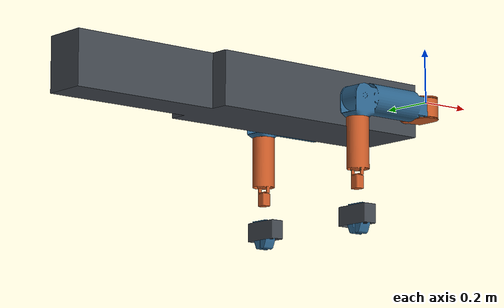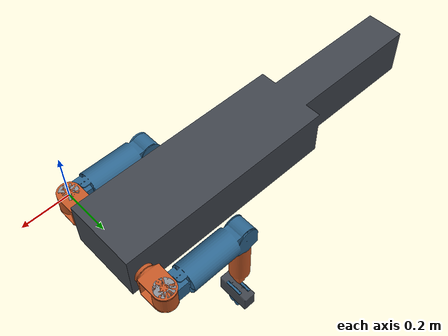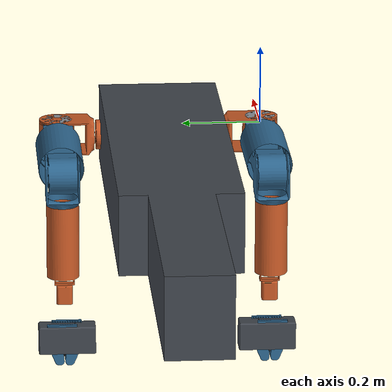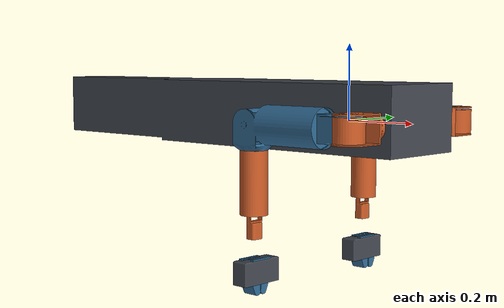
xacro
<?xml version="1.0"?>
<robot name="robothath" xmlns:xacro="http://www.ros.org/wiki/xacro">

  <xacro:property name="span" value="0.5236"/>
  <xacro:property name="mesh" value="package://robothath_description/meshes"/>

  <material name="grey">  <color rgba="0.55 0.57 0.60 1"/></material>
  <material name="orange"><color rgba="0.78 0.35 0.15 1"/></material>
  <material name="steel"> <color rgba="0.18 0.40 0.56 1"/></material>
  <material name="green"> <color rgba="0.20 0.55 0.40 1"/></material>
  <material name="dark">  <color rgba="0.25 0.27 0.30 1"/></material>

  <!-- CAD-derived mass properties, one block per side+part -->
  <xacro:macro name="inertial_lookup" params="side part">
    <xacro:if value="${side == 'l' and part == 'motor_mount'}">
      <inertial>
        <origin xyz="0.00000 0.00005 -0.00172" rpy="0 0 0"/>
        <mass value="0.4243"/>
        <inertia ixx="0.000181" ixy="0.000000" ixz="0.000000" iyy="0.000182" iyz="0.000000" izz="0.000285"/>
      </inertial>
    </xacro:if>
    <xacro:if value="${side == 'l' and part == 'yaw_link'}">
      <inertial>
        <origin xyz="0.00377 0.05427 -0.02738" rpy="0 0 0"/>
        <mass value="1.4721"/>
        <inertia ixx="0.001939" ixy="0.000005" ixz="-0.000016" iyy="0.001448" iyz="0.000037" izz="0.001804"/>
      </inertial>
    </xacro:if>
    <xacro:if value="${side == 'l' and part == 'upper_arm_link'}">
      <inertial>
        <origin xyz="-0.22785 0.00304 -0.00424" rpy="0 0 0"/>
        <mass value="2.3086"/>
        <inertia ixx="0.003372" ixy="-0.000011" ixz="0.000004" iyy="0.003511" iyz="0.000013" izz="0.003458"/>
      </inertial>
    </xacro:if>
    <xacro:if value="${side == 'l' and part == 'forearm_link'}">
      <inertial>
        <origin xyz="-0.00039 0.00256 -0.18329" rpy="0 0 0"/>
        <mass value="0.5888"/>
        <inertia ixx="0.001419" ixy="-0.000000" ixz="0.000001" iyy="0.001354" iyz="0.000004" izz="0.000442"/>
      </inertial>
    </xacro:if>
    <xacro:if value="${side == 'l' and part == 'wrist_link'}">
      <inertial>
        <origin xyz="-0.00020 0.00345 -0.04940" rpy="0 0 0"/>
        <mass value="0.1787"/>
        <inertia ixx="0.000057" ixy="0.000000" ixz="0.000000" iyy="0.000046" iyz="0.000000" izz="0.000040"/>
      </inertial>
    </xacro:if>
    <xacro:if value="${side == 'l' and part == 'gripper_base'}">
      <inertial>
        <origin xyz="0.00310 0.00186 -0.02610" rpy="0 0 0"/>
        <mass value="0.9586"/>
        <inertia ixx="0.001854" ixy="-0.000000" ixz="-0.000000" iyy="0.000447" iyz="-0.000000" izz="0.001879"/>
      </inertial>
    </xacro:if>
    <xacro:if value="${side == 'l' and part == 'finger_inner'}">
      <inertial>
        <origin xyz="0.00042 0.00001 -0.03766" rpy="0 0 0"/>
        <mass value="0.3767"/>
        <inertia ixx="0.000316" ixy="0.000003" ixz="-0.000019" iyy="0.000334" iyz="-0.000019" izz="0.000116"/>
      </inertial>
    </xacro:if>
    <xacro:if value="${side == 'l' and part == 'finger_outer'}">
      <inertial>
        <origin xyz="-0.00035 -0.00002 -0.03766" rpy="0 0 0"/>
        <mass value="0.3767"/>
        <inertia ixx="0.000316" ixy="0.000003" ixz="0.000019" iyy="0.000334" iyz="0.000019" izz="0.000116"/>
      </inertial>
    </xacro:if>
    <xacro:if value="${side == 'r' and part == 'motor_mount'}">
      <inertial>
        <origin xyz="0.00000 -0.00004 -0.00172" rpy="0 0 0"/>
        <mass value="0.4243"/>
        <inertia ixx="0.000181" ixy="-0.000000" ixz="0.000000" iyy="0.000182" iyz="-0.000000" izz="0.000285"/>
      </inertial>
    </xacro:if>
    <xacro:if value="${side == 'r' and part == 'yaw_link'}">
      <inertial>
        <origin xyz="0.00377 -0.05425 -0.02738" rpy="0 0 0"/>
        <mass value="1.4721"/>
        <inertia ixx="0.001939" ixy="-0.000005" ixz="-0.000016" iyy="0.001448" iyz="-0.000037" izz="0.001804"/>
      </inertial>
    </xacro:if>
    <xacro:if value="${side == 'r' and part == 'upper_arm_link'}">
      <inertial>
        <origin xyz="-0.22785 -0.00303 -0.00424" rpy="0 0 0"/>
        <mass value="2.3086"/>
        <inertia ixx="0.003372" ixy="0.000011" ixz="0.000004" iyy="0.003511" iyz="-0.000013" izz="0.003458"/>
      </inertial>
    </xacro:if>
    <xacro:if value="${side == 'r' and part == 'forearm_link'}">
      <inertial>
        <origin xyz="-0.00039 -0.00255 -0.18329" rpy="0 0 0"/>
        <mass value="0.5888"/>
        <inertia ixx="0.001419" ixy="0.000000" ixz="0.000001" iyy="0.001354" iyz="-0.000004" izz="0.000442"/>
      </inertial>
    </xacro:if>
    <xacro:if value="${side == 'r' and part == 'wrist_link'}">
      <inertial>
        <origin xyz="-0.00020 -0.00344 -0.04940" rpy="0 0 0"/>
        <mass value="0.1787"/>
        <inertia ixx="0.000057" ixy="0.000000" ixz="0.000000" iyy="0.000046" iyz="0.000000" izz="0.000040"/>
      </inertial>
    </xacro:if>
    <xacro:if value="${side == 'r' and part == 'gripper_base'}">
      <inertial>
        <origin xyz="0.00310 -0.00185 -0.02610" rpy="0 0 0"/>
        <mass value="0.9586"/>
        <inertia ixx="0.001854" ixy="0.000000" ixz="-0.000000" iyy="0.000447" iyz="0.000000" izz="0.001879"/>
      </inertial>
    </xacro:if>
    <xacro:if value="${side == 'r' and part == 'finger_inner'}">
      <inertial>
        <origin xyz="0.00042 -0.00000 -0.03766" rpy="0 0 0"/>
        <mass value="0.3767"/>
        <inertia ixx="0.000316" ixy="-0.000003" ixz="-0.000019" iyy="0.000334" iyz="0.000019" izz="0.000116"/>
      </inertial>
    </xacro:if>
    <xacro:if value="${side == 'r' and part == 'finger_outer'}">
      <inertial>
        <origin xyz="-0.00035 0.00003 -0.03766" rpy="0 0 0"/>
        <mass value="0.3767"/>
        <inertia ixx="0.000316" ixy="-0.000003" ixz="0.000019" iyy="0.000334" iyz="-0.000019" izz="0.000116"/>
      </inertial>
    </xacro:if>
  </xacro:macro>

  <xacro:macro name="limb_link" params="side part colour">
    <link name="${side}_${part}">
      <visual>
        <geometry><mesh filename="${mesh}/${side}_${part}.stl"/></geometry>
        <material name="${colour}"/>
      </visual>
      <collision>
        <geometry><mesh filename="${mesh}/${side}_${part}.stl"/></geometry>
      </collision>
      <xacro:inertial_lookup side="${side}" part="${part}"/>
    </link>
  </xacro:macro>

  <!-- one whole limb; y_mount is where it bolts to the chassis -->
  <xacro:macro name="limb" params="side y_mount ysign">
    <joint name="${side}_base_mount_joint" type="fixed">
      <parent link="base_link"/>
      <child  link="${side}_motor_mount"/>
      <origin xyz="0 ${y_mount} 0" rpy="0 0 0"/>
    </joint>
    <xacro:limb_link side="${side}" part="motor_mount" colour="grey"/>
    <joint name="${side}_base_yaw_joint" type="revolute">
      <parent link="${side}_motor_mount"/>
      <child  link="${side}_yaw_link"/>
      <origin xyz="0.0000 0 0.0000" rpy="0 0 0"/>
      <axis xyz="0 1 0"/>
      <limit lower="-3.1416" upper="3.1416" effort="40" velocity="3.0"/>
    </joint>
    <xacro:limb_link side="${side}" part="yaw_link" colour="orange"/>
    <joint name="${side}_shoulder_pitch_joint" type="revolute">
      <parent link="${side}_yaw_link"/>
      <child  link="${side}_shoulder_link"/>
      <origin xyz="0.0000 0 -0.0250" rpy="0 0 0"/>
      <axis xyz="0 0 1"/>
      <limit lower="-2.0944" upper="2.0944" effort="40" velocity="3.0"/>
    </joint>
    <link name="${side}_shoulder_link">
      <inertial>
        <origin xyz="0 0 0" rpy="0 0 0"/>
        <mass value="0.001"/>
        <inertia ixx="1e-6" ixy="0" ixz="0" iyy="1e-6" iyz="0" izz="1e-6"/>
      </inertial>
    </link>
    <joint name="${side}_shoulder_roll_joint" type="revolute">
      <parent link="${side}_shoulder_link"/>
      <child  link="${side}_upper_arm_link"/>
      <origin xyz="0.0000 0 0.0000" rpy="0 0 0"/>
      <axis xyz="1 0 0"/>
      <limit lower="-2.0944" upper="2.0944" effort="40" velocity="3.0"/>
    </joint>
    <xacro:limb_link side="${side}" part="upper_arm_link" colour="steel"/>
    <joint name="${side}_elbow_pitch_joint" type="revolute">
      <parent link="${side}_upper_arm_link"/>
      <child  link="${side}_forearm_link"/>
      <origin xyz="-0.3420 0 0.0000" rpy="0 0 0"/>
      <axis xyz="0 1 0"/>
      <limit lower="-2.618" upper="2.618" effort="30" velocity="3.0"/>
    </joint>
    <xacro:limb_link side="${side}" part="forearm_link" colour="orange"/>
    <joint name="${side}_wrist_joint" type="revolute">
      <parent link="${side}_forearm_link"/>
      <child  link="${side}_wrist_link"/>
      <origin xyz="-0.0003 0 -0.2580" rpy="0 0 0"/>
      <axis xyz="0 1 0"/>
      <limit lower="-1.5708" upper="1.5708" effort="20" velocity="3.0"/>
    </joint>
    <xacro:limb_link side="${side}" part="wrist_link" colour="green"/>
    <joint name="${side}_wrist_roll_joint" type="revolute">
      <parent link="${side}_wrist_link"/>
      <child  link="${side}_gripper_base"/>
      <origin xyz="-0.0002 ${0.0034*ysign} -0.0760" rpy="0 0 0"/>
      <axis xyz="0 0 1"/>
      <limit lower="-3.1416" upper="3.1416" effort="10" velocity="3.0"/>
    </joint>
    <xacro:limb_link side="${side}" part="gripper_base" colour="dark"/>
    <joint name="${side}_finger_inner_joint" type="prismatic">
      <parent link="${side}_gripper_base"/>
      <child  link="${side}_finger_inner"/>
      <origin xyz="0.0035 ${0.0189*ysign} -0.0710" rpy="0 0 0"/>
      <axis xyz="0 ${ysign} 0"/>
      <limit lower="0.0" upper="0.025" effort="20" velocity="0.1"/>
    </joint>
    <xacro:limb_link side="${side}" part="finger_inner" colour="steel"/>
    <joint name="${side}_finger_outer_joint" type="prismatic">
      <parent link="${side}_gripper_base"/>
      <child  link="${side}_finger_outer"/>
      <origin xyz="0.0035 ${-0.0209*ysign} -0.0710" rpy="0 0 0"/>
      <axis xyz="0 ${-ysign} 0"/>
      <limit lower="0.0" upper="0.025" effort="20" velocity="0.1"/>
      <mimic joint="${side}_finger_inner_joint" multiplier="1.0" offset="0.0"/>
    </joint>
    <xacro:limb_link side="${side}" part="finger_outer" colour="steel"/>
  </xacro:macro>

  <link name="base_footprint"/>
  <joint name="base_footprint_joint" type="fixed">
    <parent link="base_footprint"/>
    <child  link="base_link"/>
    <origin xyz="0 0 0" rpy="0 0 0"/>
  </joint>

  <link name="base_link">
    <visual>
      <geometry><mesh filename="${mesh}/base_link.stl"/></geometry>
      <material name="dark"/>
    </visual>
    <collision>
      <geometry><mesh filename="${mesh}/base_link.stl"/></geometry>
    </collision>
    <inertial>
      <origin xyz="-0.59917 0.26181 -0.00791" rpy="0 0 0"/>
      <mass value="20.0000"/>
      <inertia ixx="0.189936" ixy="0.000000" ixz="-0.001891" iyy="3.346280" iyz="0.000000" izz="3.401775"/>
    </inertial>
  </link>

  <xacro:limb side="l" y_mount="0"       ysign="1"/>
  <xacro:limb side="r" y_mount="${span}" ysign="-1"/>

</robot>
